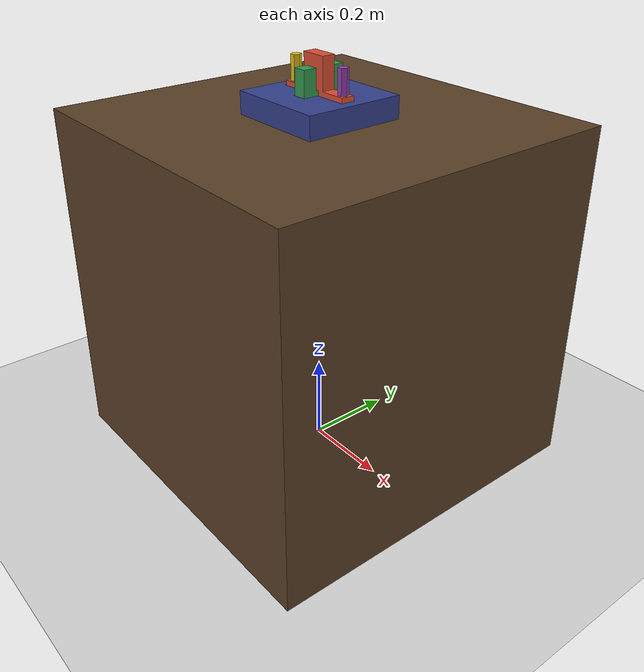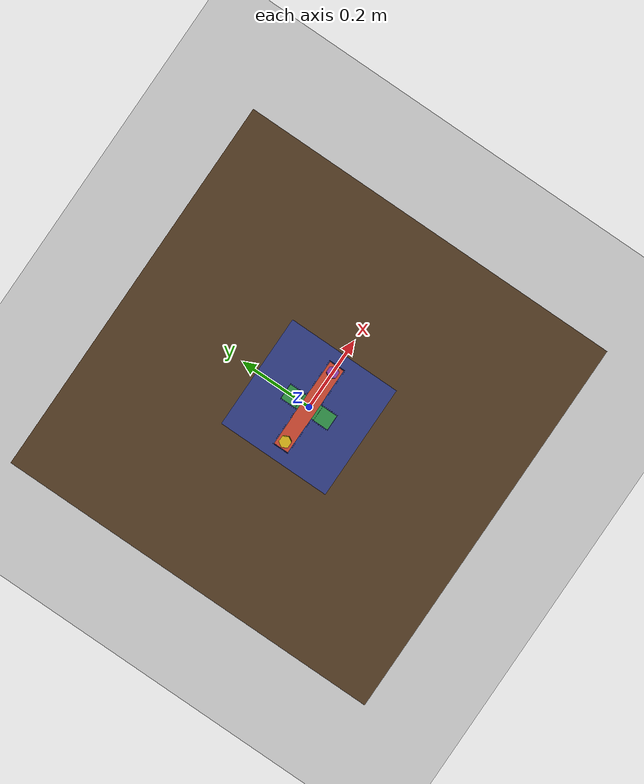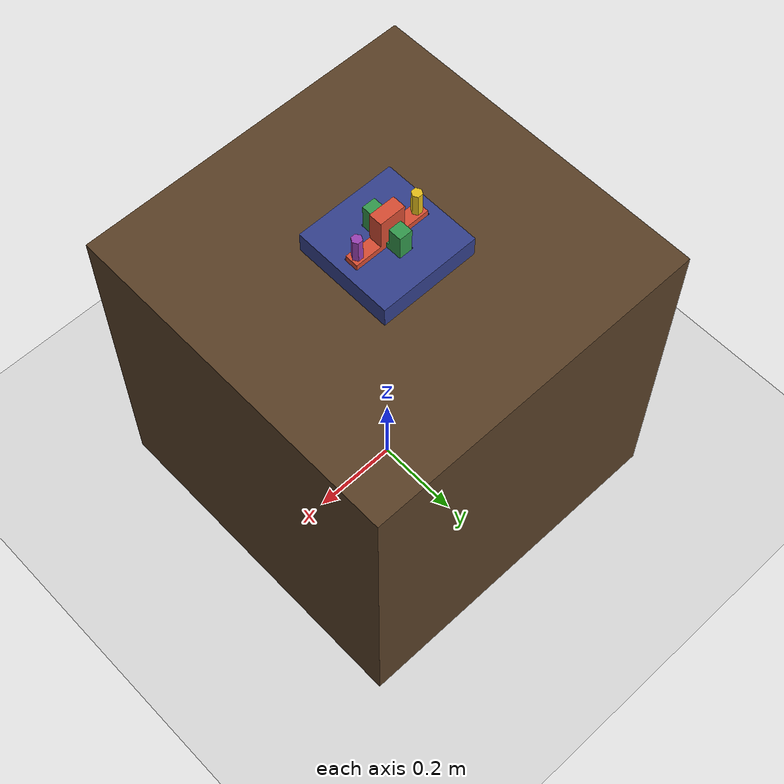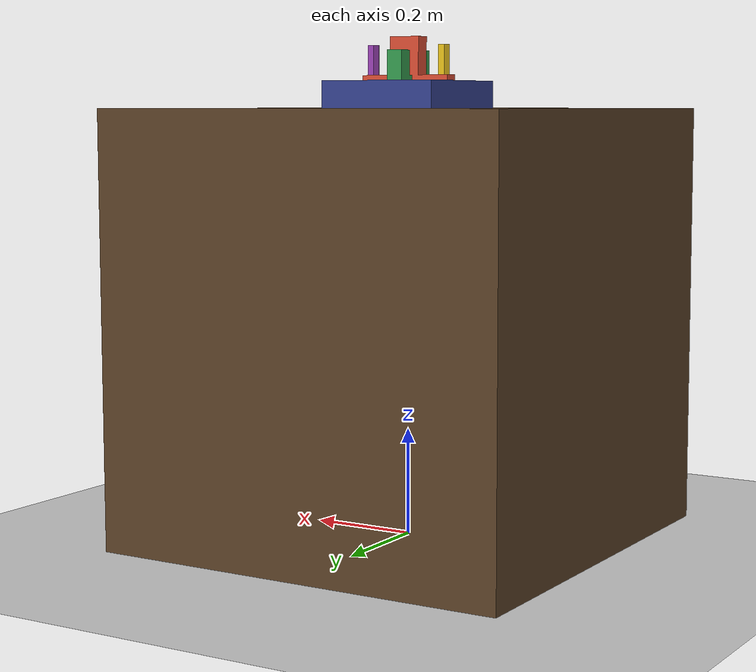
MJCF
<mujoco model="FMB Multi 2">
  <compiler angle="radian" autolimits="true" meshdir="obj" texturedir="obj"/>
  <option integrator="RK4"/>
  <visual><global offwidth="1280" offheight="960"/></visual>
  <include file="floor_isaac.xml"/>
  <asset>
    <texture type="2d" name="light_wood" file="light_wood_v3.png"/>
    <material name="wt" texture="light_wood" specular="0.5" shininess="0.5" rgba="0.5 0.5 0.5 1"/>
    <mesh name="board_2_base" file="board_2/board_2_base/board_2_base.obj"/>
    <mesh name="base_c0" file="board_2/board_2_base/board_2_base_collision_0.obj"/>
    <mesh name="base_c1" file="board_2/board_2_base/board_2_base_collision_1.obj"/>
    <mesh name="base_c2" file="board_2/board_2_base/board_2_base_collision_10.obj"/>
    <mesh name="base_c3" file="board_2/board_2_base/board_2_base_collision_11.obj"/>
    <mesh name="base_c4" file="board_2/board_2_base/board_2_base_collision_12.obj"/>
    <mesh name="base_c5" file="board_2/board_2_base/board_2_base_collision_13.obj"/>
    <mesh name="base_c6" file="board_2/board_2_base/board_2_base_collision_14.obj"/>
    <mesh name="base_c7" file="board_2/board_2_base/board_2_base_collision_15.obj"/>
    <mesh name="base_c8" file="board_2/board_2_base/board_2_base_collision_16.obj"/>
    <mesh name="base_c9" file="board_2/board_2_base/board_2_base_collision_17.obj"/>
    <mesh name="base_c10" file="board_2/board_2_base/board_2_base_collision_18.obj"/>
    <mesh name="base_c11" file="board_2/board_2_base/board_2_base_collision_19.obj"/>
    <mesh name="base_c12" file="board_2/board_2_base/board_2_base_collision_2.obj"/>
    <mesh name="base_c13" file="board_2/board_2_base/board_2_base_collision_20.obj"/>
    <mesh name="base_c14" file="board_2/board_2_base/board_2_base_collision_21.obj"/>
    <mesh name="base_c15" file="board_2/board_2_base/board_2_base_collision_22.obj"/>
    <mesh name="base_c16" file="board_2/board_2_base/board_2_base_collision_23.obj"/>
    <mesh name="base_c17" file="board_2/board_2_base/board_2_base_collision_24.obj"/>
    <mesh name="base_c18" file="board_2/board_2_base/board_2_base_collision_25.obj"/>
    <mesh name="base_c19" file="board_2/board_2_base/board_2_base_collision_26.obj"/>
    <mesh name="base_c20" file="board_2/board_2_base/board_2_base_collision_27.obj"/>
    <mesh name="base_c21" file="board_2/board_2_base/board_2_base_collision_28.obj"/>
    <mesh name="base_c22" file="board_2/board_2_base/board_2_base_collision_29.obj"/>
    <mesh name="base_c23" file="board_2/board_2_base/board_2_base_collision_3.obj"/>
    <mesh name="base_c24" file="board_2/board_2_base/board_2_base_collision_30.obj"/>
    <mesh name="base_c25" file="board_2/board_2_base/board_2_base_collision_31.obj"/>
    <mesh name="base_c26" file="board_2/board_2_base/board_2_base_collision_32.obj"/>
    <mesh name="base_c27" file="board_2/board_2_base/board_2_base_collision_33.obj"/>
    <mesh name="base_c28" file="board_2/board_2_base/board_2_base_collision_34.obj"/>
    <mesh name="base_c29" file="board_2/board_2_base/board_2_base_collision_35.obj"/>
    <mesh name="base_c30" file="board_2/board_2_base/board_2_base_collision_36.obj"/>
    <mesh name="base_c31" file="board_2/board_2_base/board_2_base_collision_37.obj"/>
    <mesh name="base_c32" file="board_2/board_2_base/board_2_base_collision_38.obj"/>
    <mesh name="base_c33" file="board_2/board_2_base/board_2_base_collision_39.obj"/>
    <mesh name="base_c34" file="board_2/board_2_base/board_2_base_collision_4.obj"/>
    <mesh name="base_c35" file="board_2/board_2_base/board_2_base_collision_40.obj"/>
    <mesh name="base_c36" file="board_2/board_2_base/board_2_base_collision_41.obj"/>
    <mesh name="base_c37" file="board_2/board_2_base/board_2_base_collision_42.obj"/>
    <mesh name="base_c38" file="board_2/board_2_base/board_2_base_collision_43.obj"/>
    <mesh name="base_c39" file="board_2/board_2_base/board_2_base_collision_44.obj"/>
    <mesh name="base_c40" file="board_2/board_2_base/board_2_base_collision_45.obj"/>
    <mesh name="base_c41" file="board_2/board_2_base/board_2_base_collision_46.obj"/>
    <mesh name="base_c42" file="board_2/board_2_base/board_2_base_collision_47.obj"/>
    <mesh name="base_c43" file="board_2/board_2_base/board_2_base_collision_48.obj"/>
    <mesh name="base_c44" file="board_2/board_2_base/board_2_base_collision_49.obj"/>
    <mesh name="base_c45" file="board_2/board_2_base/board_2_base_collision_5.obj"/>
    <mesh name="base_c46" file="board_2/board_2_base/board_2_base_collision_50.obj"/>
    <mesh name="base_c47" file="board_2/board_2_base/board_2_base_collision_51.obj"/>
    <mesh name="base_c48" file="board_2/board_2_base/board_2_base_collision_52.obj"/>
    <mesh name="base_c49" file="board_2/board_2_base/board_2_base_collision_53.obj"/>
    <mesh name="base_c50" file="board_2/board_2_base/board_2_base_collision_54.obj"/>
    <mesh name="base_c51" file="board_2/board_2_base/board_2_base_collision_55.obj"/>
    <mesh name="base_c52" file="board_2/board_2_base/board_2_base_collision_56.obj"/>
    <mesh name="base_c53" file="board_2/board_2_base/board_2_base_collision_57.obj"/>
    <mesh name="base_c54" file="board_2/board_2_base/board_2_base_collision_58.obj"/>
    <mesh name="base_c55" file="board_2/board_2_base/board_2_base_collision_59.obj"/>
    <mesh name="base_c56" file="board_2/board_2_base/board_2_base_collision_6.obj"/>
    <mesh name="base_c57" file="board_2/board_2_base/board_2_base_collision_60.obj"/>
    <mesh name="base_c58" file="board_2/board_2_base/board_2_base_collision_61.obj"/>
    <mesh name="base_c59" file="board_2/board_2_base/board_2_base_collision_62.obj"/>
    <mesh name="base_c60" file="board_2/board_2_base/board_2_base_collision_63.obj"/>
    <mesh name="base_c61" file="board_2/board_2_base/board_2_base_collision_64.obj"/>
    <mesh name="base_c62" file="board_2/board_2_base/board_2_base_collision_65.obj"/>
    <mesh name="base_c63" file="board_2/board_2_base/board_2_base_collision_66.obj"/>
    <mesh name="base_c64" file="board_2/board_2_base/board_2_base_collision_67.obj"/>
    <mesh name="base_c65" file="board_2/board_2_base/board_2_base_collision_68.obj"/>
    <mesh name="base_c66" file="board_2/board_2_base/board_2_base_collision_69.obj"/>
    <mesh name="base_c67" file="board_2/board_2_base/board_2_base_collision_7.obj"/>
    <mesh name="base_c68" file="board_2/board_2_base/board_2_base_collision_70.obj"/>
    <mesh name="base_c69" file="board_2/board_2_base/board_2_base_collision_71.obj"/>
    <mesh name="base_c70" file="board_2/board_2_base/board_2_base_collision_8.obj"/>
    <mesh name="base_c71" file="board_2/board_2_base/board_2_base_collision_9.obj"/>
    <mesh name="board_2_part1" file="board_2/board_2_part1/board_2_part1.obj"/>
    <mesh name="board_2_part1_c0" file="board_2/board_2_part1/board_2_part1_collision_0.obj"/>
    <mesh name="board_2_part1_c1" file="board_2/board_2_part1/board_2_part1_collision_1.obj"/>
    <mesh name="board_2_part1_c10" file="board_2/board_2_part1/board_2_part1_collision_10.obj"/>
    <mesh name="board_2_part1_c11" file="board_2/board_2_part1/board_2_part1_collision_11.obj"/>
    <mesh name="board_2_part1_c2" file="board_2/board_2_part1/board_2_part1_collision_2.obj"/>
    <mesh name="board_2_part1_c3" file="board_2/board_2_part1/board_2_part1_collision_3.obj"/>
    <mesh name="board_2_part1_c4" file="board_2/board_2_part1/board_2_part1_collision_4.obj"/>
    <mesh name="board_2_part1_c5" file="board_2/board_2_part1/board_2_part1_collision_5.obj"/>
    <mesh name="board_2_part1_c6" file="board_2/board_2_part1/board_2_part1_collision_6.obj"/>
    <mesh name="board_2_part1_c7" file="board_2/board_2_part1/board_2_part1_collision_7.obj"/>
    <mesh name="board_2_part1_c8" file="board_2/board_2_part1/board_2_part1_collision_8.obj"/>
    <mesh name="board_2_part1_c9" file="board_2/board_2_part1/board_2_part1_collision_9.obj"/>
    <mesh name="board_2_part2" file="board_2/board_2_part2/board_2_part2.obj"/>
    <mesh name="board_2_part2_c0" file="board_2/board_2_part2/board_2_part2_collision_0.obj"/>
    <mesh name="board_2_part2_c1" file="board_2/board_2_part2/board_2_part2_collision_1.obj"/>
    <mesh name="board_2_part2_c2" file="board_2/board_2_part2/board_2_part2_collision_2.obj"/>
    <mesh name="board_2_part3" file="board_2/board_2_part3/board_2_part3.obj"/>
    <mesh name="board_2_part3_c0" file="board_2/board_2_part3/board_2_part3_collision_0.obj"/>
    <mesh name="board_2_part3_c1" file="board_2/board_2_part3/board_2_part3_collision_1.obj"/>
    <mesh name="board_2_part4" file="board_2/board_2_part4/board_2_part4.obj"/>
    <mesh name="board_2_part4_c0" file="board_2/board_2_part4/board_2_part4_collision_0.obj"/>
    <mesh name="board_2_part4_c1" file="board_2/board_2_part4/board_2_part4_collision_1.obj"/>
  </asset>
  <worldbody>
    <body name="table"><geom type="box" size="0.4 0.4 0.4" pos="0 0 0.4" material="wt" mass="100"/></body>
    <body name="base" pos="0 0 0.8">
      <geom mesh="board_2_base" group="2" type="mesh" contype="0" conaffinity="0" rgba="0.2 0.25 0.55 1"/>
      <geom mesh="base_c0" type="mesh" rgba="0 0 0 0"/>
      <geom mesh="base_c1" type="mesh" rgba="0 0 0 0"/>
      <geom mesh="base_c2" type="mesh" rgba="0 0 0 0"/>
      <geom mesh="base_c3" type="mesh" rgba="0 0 0 0"/>
      <geom mesh="base_c4" type="mesh" rgba="0 0 0 0"/>
      <geom mesh="base_c5" type="mesh" rgba="0 0 0 0"/>
      <geom mesh="base_c6" type="mesh" rgba="0 0 0 0"/>
      <geom mesh="base_c7" type="mesh" rgba="0 0 0 0"/>
      <geom mesh="base_c8" type="mesh" rgba="0 0 0 0"/>
      <geom mesh="base_c9" type="mesh" rgba="0 0 0 0"/>
      <geom mesh="base_c10" type="mesh" rgba="0 0 0 0"/>
      <geom mesh="base_c11" type="mesh" rgba="0 0 0 0"/>
      <geom mesh="base_c12" type="mesh" rgba="0 0 0 0"/>
      <geom mesh="base_c13" type="mesh" rgba="0 0 0 0"/>
      <geom mesh="base_c14" type="mesh" rgba="0 0 0 0"/>
      <geom mesh="base_c15" type="mesh" rgba="0 0 0 0"/>
      <geom mesh="base_c16" type="mesh" rgba="0 0 0 0"/>
      <geom mesh="base_c17" type="mesh" rgba="0 0 0 0"/>
      <geom mesh="base_c18" type="mesh" rgba="0 0 0 0"/>
      <geom mesh="base_c19" type="mesh" rgba="0 0 0 0"/>
      <geom mesh="base_c20" type="mesh" rgba="0 0 0 0"/>
      <geom mesh="base_c21" type="mesh" rgba="0 0 0 0"/>
      <geom mesh="base_c22" type="mesh" rgba="0 0 0 0"/>
      <geom mesh="base_c23" type="mesh" rgba="0 0 0 0"/>
      <geom mesh="base_c24" type="mesh" rgba="0 0 0 0"/>
      <geom mesh="base_c25" type="mesh" rgba="0 0 0 0"/>
      <geom mesh="base_c26" type="mesh" rgba="0 0 0 0"/>
      <geom mesh="base_c27" type="mesh" rgba="0 0 0 0"/>
      <geom mesh="base_c28" type="mesh" rgba="0 0 0 0"/>
      <geom mesh="base_c29" type="mesh" rgba="0 0 0 0"/>
      <geom mesh="base_c30" type="mesh" rgba="0 0 0 0"/>
      <geom mesh="base_c31" type="mesh" rgba="0 0 0 0"/>
      <geom mesh="base_c32" type="mesh" rgba="0 0 0 0"/>
      <geom mesh="base_c33" type="mesh" rgba="0 0 0 0"/>
      <geom mesh="base_c34" type="mesh" rgba="0 0 0 0"/>
      <geom mesh="base_c35" type="mesh" rgba="0 0 0 0"/>
      <geom mesh="base_c36" type="mesh" rgba="0 0 0 0"/>
      <geom mesh="base_c37" type="mesh" rgba="0 0 0 0"/>
      <geom mesh="base_c38" type="mesh" rgba="0 0 0 0"/>
      <geom mesh="base_c39" type="mesh" rgba="0 0 0 0"/>
      <geom mesh="base_c40" type="mesh" rgba="0 0 0 0"/>
      <geom mesh="base_c41" type="mesh" rgba="0 0 0 0"/>
      <geom mesh="base_c42" type="mesh" rgba="0 0 0 0"/>
      <geom mesh="base_c43" type="mesh" rgba="0 0 0 0"/>
      <geom mesh="base_c44" type="mesh" rgba="0 0 0 0"/>
      <geom mesh="base_c45" type="mesh" rgba="0 0 0 0"/>
      <geom mesh="base_c46" type="mesh" rgba="0 0 0 0"/>
      <geom mesh="base_c47" type="mesh" rgba="0 0 0 0"/>
      <geom mesh="base_c48" type="mesh" rgba="0 0 0 0"/>
      <geom mesh="base_c49" type="mesh" rgba="0 0 0 0"/>
      <geom mesh="base_c50" type="mesh" rgba="0 0 0 0"/>
      <geom mesh="base_c51" type="mesh" rgba="0 0 0 0"/>
      <geom mesh="base_c52" type="mesh" rgba="0 0 0 0"/>
      <geom mesh="base_c53" type="mesh" rgba="0 0 0 0"/>
      <geom mesh="base_c54" type="mesh" rgba="0 0 0 0"/>
      <geom mesh="base_c55" type="mesh" rgba="0 0 0 0"/>
      <geom mesh="base_c56" type="mesh" rgba="0 0 0 0"/>
      <geom mesh="base_c57" type="mesh" rgba="0 0 0 0"/>
      <geom mesh="base_c58" type="mesh" rgba="0 0 0 0"/>
      <geom mesh="base_c59" type="mesh" rgba="0 0 0 0"/>
      <geom mesh="base_c60" type="mesh" rgba="0 0 0 0"/>
      <geom mesh="base_c61" type="mesh" rgba="0 0 0 0"/>
      <geom mesh="base_c62" type="mesh" rgba="0 0 0 0"/>
      <geom mesh="base_c63" type="mesh" rgba="0 0 0 0"/>
      <geom mesh="base_c64" type="mesh" rgba="0 0 0 0"/>
      <geom mesh="base_c65" type="mesh" rgba="0 0 0 0"/>
      <geom mesh="base_c66" type="mesh" rgba="0 0 0 0"/>
      <geom mesh="base_c67" type="mesh" rgba="0 0 0 0"/>
      <geom mesh="base_c68" type="mesh" rgba="0 0 0 0"/>
      <geom mesh="base_c69" type="mesh" rgba="0 0 0 0"/>
      <geom mesh="base_c70" type="mesh" rgba="0 0 0 0"/>
      <geom mesh="base_c71" type="mesh" rgba="0 0 0 0"/>
    </body>
    <body name="part1" pos="0.0 0.0 0.8305">
      <joint type="free" damping="0.005"/>
      <geom mesh="board_2_part1" group="2" type="mesh" contype="0" conaffinity="0" rgba="0.85 0.3 0.2 1"/>
      <geom mesh="board_2_part1_c0" type="mesh" rgba="0 0 0 0"/>
      <geom mesh="board_2_part1_c1" type="mesh" rgba="0 0 0 0"/>
      <geom mesh="board_2_part1_c10" type="mesh" rgba="0 0 0 0"/>
      <geom mesh="board_2_part1_c11" type="mesh" rgba="0 0 0 0"/>
      <geom mesh="board_2_part1_c2" type="mesh" rgba="0 0 0 0"/>
      <geom mesh="board_2_part1_c3" type="mesh" rgba="0 0 0 0"/>
      <geom mesh="board_2_part1_c4" type="mesh" rgba="0 0 0 0"/>
      <geom mesh="board_2_part1_c5" type="mesh" rgba="0 0 0 0"/>
      <geom mesh="board_2_part1_c6" type="mesh" rgba="0 0 0 0"/>
      <geom mesh="board_2_part1_c7" type="mesh" rgba="0 0 0 0"/>
      <geom mesh="board_2_part1_c8" type="mesh" rgba="0 0 0 0"/>
      <geom mesh="board_2_part1_c9" type="mesh" rgba="0 0 0 0"/>
    </body>
    <body name="part2" pos="0.0 0.0 0.8055">
      <joint type="free" damping="0.005"/>
      <geom mesh="board_2_part2" group="2" type="mesh" contype="0" conaffinity="0" rgba="0.2 0.6 0.3 1"/>
      <geom mesh="board_2_part2_c0" type="mesh" rgba="0 0 0 0"/>
      <geom mesh="board_2_part2_c1" type="mesh" rgba="0 0 0 0"/>
      <geom mesh="board_2_part2_c2" type="mesh" rgba="0 0 0 0"/>
    </body>
    <body name="part3" pos="-0.075 0.0 0.8155">
      <joint type="free" damping="0.005"/>
      <geom mesh="board_2_part3" group="2" type="mesh" contype="0" conaffinity="0" rgba="0.9 0.75 0.1 1"/>
      <geom mesh="board_2_part3_c0" type="mesh" rgba="0 0 0 0"/>
      <geom mesh="board_2_part3_c1" type="mesh" rgba="0 0 0 0"/>
    </body>
    <body name="part4" pos="0.075 0.0 0.8155">
      <joint type="free" damping="0.005"/>
      <geom mesh="board_2_part4" group="2" type="mesh" contype="0" conaffinity="0" rgba="0.6 0.25 0.7 1"/>
      <geom mesh="board_2_part4_c0" type="mesh" rgba="0 0 0 0"/>
      <geom mesh="board_2_part4_c1" type="mesh" rgba="0 0 0 0"/>
    </body>
  </worldbody>
  <keyframe><key name="aligned" qpos="-0.000158429 0.000185132 0.830438 0.999996 -2.40115e-06 0.00262339 0.00124174 -0.000193676 -1.72962e-05 0.804991 0.999999 -8.09365e-05 -0.000664631 0.000986193 -0.0753229 0.000688964 0.81607 0.999768 4.81313e-05 0.0026324 0.0213715 0.0754789 -0.000664634 0.815625 0.999977 -0.00573718 -0.00320161 0.00159398"/></keyframe>
</mujoco>

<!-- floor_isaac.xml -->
<mujoco model="floor and sky (isaac style)">

  <visual>
    <headlight diffuse="0.55 0.55 0.55" ambient="0.3 0.3 0.3" specular="0 0 0"/>
    <rgba haze="0.15 0.25 0.35 1"/>
  </visual>

  <asset>
    <!-- Sky -->
    <texture type="skybox" builtin="gradient" rgb1="0.3 0.5 0.7" rgb2="0 0 0" width="512" height="3072"/>
    <!-- Ground -->
    <texture type="2d" name="groundplane" builtin="checker" mark="edge" rgb1="0.9 0.9 0.9"
             rgb2="0.8 0.8 0.8" markrgb="0.8 0.8 0.8" width="1000" height="1000"/>
    <material name="groundplane" texture="groundplane" texuniform="true" texrepeat="1 1"
              reflectance="0.1"/>
  </asset>

  <worldbody>
    <light pos="1 -1 1.5" dir="-1 1 -1" diffuse="0.35 0.35 0.35" directional="true"/>
    <geom name="floor" group="1" size="0 0 0.05" type="plane" material="groundplane"/>
  </worldbody>

</mujoco>
